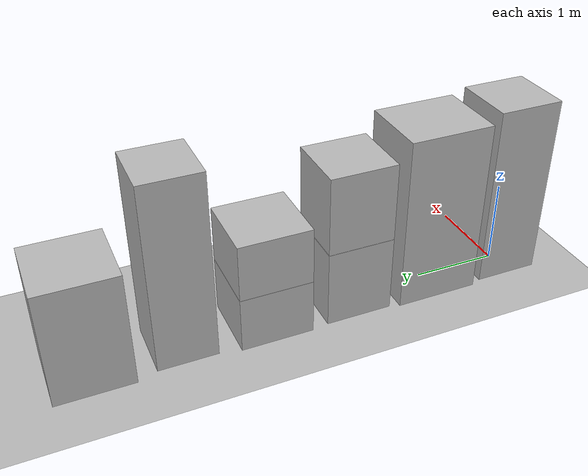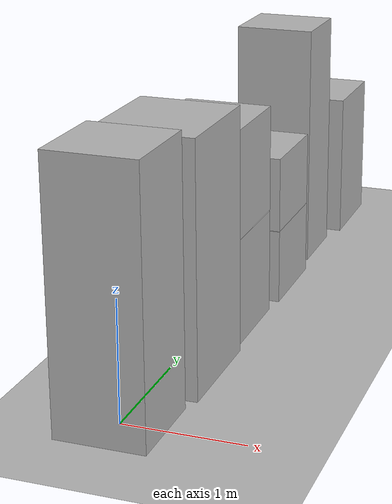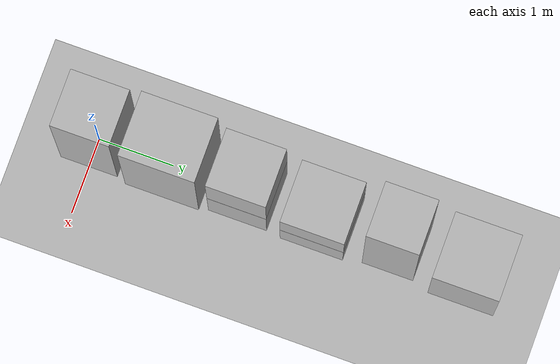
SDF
<sdf version="1.5">
 <world name="default">
  <model name="ground_plane">
   <static>true</static>
   <link name="link">
    <collision name="collision">
     <geometry><plane><normal>0 0 1</normal><size>250 250</size></plane></geometry>
     <surface><friction><ode><mu>1</mu><mu2>1</mu2></ode></friction></surface>
    </collision>
    <visual name="grass">
     <cast_shadows>false</cast_shadows>
     <geometry><mesh><uri>file://grass_plane/meshes/grass_plane.dae</uri></mesh></geometry>
    </visual>
   </link>
  </model>
  <model name="Cardboard_box_470">
   <link name="link_0">
    <inertial>
     <mass>1</mass>
     <inertia>
      <ixx>0.166667</ixx>
      <ixy>0</ixy>
      <ixz>0</ixz>
      <iyy>0.166667</iyy>
      <iyz>0</iyz>
      <izz>0.166667</izz>
     </inertia>
    </inertial>
    <collision name="collision">
     <geometry>
      <mesh>
       <uri>model://Cardboard_box/meshes/cardboard_box.dae</uri>
       <scale>1.86308046517 1.92128343274 5.5241543696</scale>
      </mesh>
     </geometry>
    </collision>
    <visual name="visual">
     <geometry>
      <mesh>
       <uri>model://Cardboard_box/meshes/cardboard_box.dae</uri>
       <scale>1.86308046517 1.92128343274 5.5241543696</scale>
      </mesh>
     </geometry>
    </visual>
   </link>
   <static>1</static>
  </model>
  <model name="Cardboard_box_471">
   <link name="link_0">
    <pose>0 1 0 0 0 0</pose>
    <inertial>
     <mass>1</mass>
     <inertia>
      <ixx>0.166667</ixx>
      <ixy>0</ixy>
      <ixz>0</ixz>
      <iyy>0.166667</iyy>
      <iyz>0</iyz>
      <izz>0.166667</izz>
     </inertia>
    </inertial>
    <collision name="collision">
     <geometry>
      <mesh>
       <uri>model://Cardboard_box/meshes/cardboard_box.dae</uri>
       <scale>2.12156059014 2.48788002002 5.28961566797</scale>
      </mesh>
     </geometry>
    </collision>
    <visual name="visual">
     <geometry>
      <mesh>
       <uri>model://Cardboard_box/meshes/cardboard_box.dae</uri>
       <scale>2.12156059014 2.48788002002 5.28961566797</scale>
      </mesh>
     </geometry>
    </visual>
   </link>
   <static>1</static>
  </model>
  <model name="Cardboard_box_472">
   <link name="link_0">
    <pose>0 2 0 0 0 0</pose>
    <inertial>
     <mass>1</mass>
     <inertia>
      <ixx>0.166667</ixx>
      <ixy>0</ixy>
      <ixz>0</ixz>
      <iyy>0.166667</iyy>
      <iyz>0</iyz>
      <izz>0.166667</izz>
     </inertia>
    </inertial>
    <collision name="collision">
     <geometry>
      <mesh>
       <uri>model://Cardboard_box/meshes/cardboard_box.dae</uri>
       <scale>1.91652156845 1.96736307801 2.3367716789</scale>
      </mesh>
     </geometry>
    </collision>
    <visual name="visual">
     <geometry>
      <mesh>
       <uri>model://Cardboard_box/meshes/cardboard_box.dae</uri>
       <scale>1.91652156845 1.96736307801 2.3367716789</scale>
      </mesh>
     </geometry>
    </visual>
   </link>
   <static>1</static>
  </model>
  <model name="Cardboard_box_top_472">
   <link name="link_0">
    <pose>0 2 0.934708671559 0 0 0</pose>
    <inertial>
     <mass>1</mass>
     <inertia>
      <ixx>0.166667</ixx>
      <ixy>0</ixy>
      <ixz>0</ixz>
      <iyy>0.166667</iyy>
      <iyz>0</iyz>
      <izz>0.166667</izz>
     </inertia>
    </inertial>
    <collision name="collision">
     <geometry>
      <mesh>
       <uri>model://Cardboard_box/meshes/cardboard_box.dae</uri>
       <scale>1.91652156845 1.96736307801 2.3367716789</scale>
      </mesh>
     </geometry>
    </collision>
    <visual name="visual">
     <geometry>
      <mesh>
       <uri>model://Cardboard_box/meshes/cardboard_box.dae</uri>
       <scale>1.91652156845 1.96736307801 2.3367716789</scale>
      </mesh>
     </geometry>
    </visual>
   </link>
   <static>1</static>
  </model>
  <model name="Cardboard_box_473">
   <link name="link_0">
    <pose>0 3 0 0 0 0</pose>
    <inertial>
     <mass>1</mass>
     <inertia>
      <ixx>0.166667</ixx>
      <ixy>0</ixy>
      <ixz>0</ixz>
      <iyy>0.166667</iyy>
      <iyz>0</iyz>
      <izz>0.166667</izz>
     </inertia>
    </inertial>
    <collision name="collision">
     <geometry>
      <mesh>
       <uri>model://Cardboard_box/meshes/cardboard_box.dae</uri>
       <scale>2.0626993358 2.11126296002 1.67812197346</scale>
      </mesh>
     </geometry>
    </collision>
    <visual name="visual">
     <geometry>
      <mesh>
       <uri>model://Cardboard_box/meshes/cardboard_box.dae</uri>
       <scale>2.0626993358 2.11126296002 1.67812197346</scale>
      </mesh>
     </geometry>
    </visual>
   </link>
   <static>1</static>
  </model>
  <model name="Cardboard_box_top_473">
   <link name="link_0">
    <pose>0 3 0.671248789385 0 0 0</pose>
    <inertial>
     <mass>1</mass>
     <inertia>
      <ixx>0.166667</ixx>
      <ixy>0</ixy>
      <ixz>0</ixz>
      <iyy>0.166667</iyy>
      <iyz>0</iyz>
      <izz>0.166667</izz>
     </inertia>
    </inertial>
    <collision name="collision">
     <geometry>
      <mesh>
       <uri>model://Cardboard_box/meshes/cardboard_box.dae</uri>
       <scale>2.0626993358 2.11126296002 1.67812197346</scale>
      </mesh>
     </geometry>
    </collision>
    <visual name="visual">
     <geometry>
      <mesh>
       <uri>model://Cardboard_box/meshes/cardboard_box.dae</uri>
       <scale>2.0626993358 2.11126296002 1.67812197346</scale>
      </mesh>
     </geometry>
    </visual>
   </link>
   <static>1</static>
  </model>
  <model name="Cardboard_box_474">
   <link name="link_0">
    <pose>0 4 0 0 0 0</pose>
    <inertial>
     <mass>1</mass>
     <inertia>
      <ixx>0.166667</ixx>
      <ixy>0</ixy>
      <ixz>0</ixz>
      <iyy>0.166667</iyy>
      <iyz>0</iyz>
      <izz>0.166667</izz>
     </inertia>
    </inertial>
    <collision name="collision">
     <geometry>
      <mesh>
       <uri>model://Cardboard_box/meshes/cardboard_box.dae</uri>
       <scale>1.79116812397 1.71663953108 5.6481559053</scale>
      </mesh>
     </geometry>
    </collision>
    <visual name="visual">
     <geometry>
      <mesh>
       <uri>model://Cardboard_box/meshes/cardboard_box.dae</uri>
       <scale>1.79116812397 1.71663953108 5.6481559053</scale>
      </mesh>
     </geometry>
    </visual>
   </link>
   <static>1</static>
  </model>
  <model name="Cardboard_box_475">
   <link name="link_0">
    <pose>0 5 0 0 0 0</pose>
    <inertial>
     <mass>1</mass>
     <inertia>
      <ixx>0.166667</ixx>
      <ixy>0</ixy>
      <ixz>0</ixz>
      <iyy>0.166667</iyy>
      <iyz>0</iyz>
      <izz>0.166667</izz>
     </inertia>
    </inertial>
    <collision name="collision">
     <geometry>
      <mesh>
       <uri>model://Cardboard_box/meshes/cardboard_box.dae</uri>
       <scale>2.1914703499 2.18904511199 3.45290935406</scale>
      </mesh>
     </geometry>
    </collision>
    <visual name="visual">
     <geometry>
      <mesh>
       <uri>model://Cardboard_box/meshes/cardboard_box.dae</uri>
       <scale>2.1914703499 2.18904511199 3.45290935406</scale>
      </mesh>
     </geometry>
    </visual>
   </link>
   <static>1</static>
  </model>
 </world>
</sdf>
